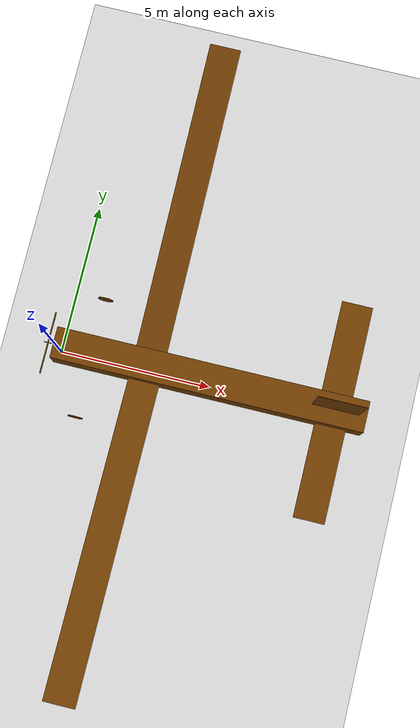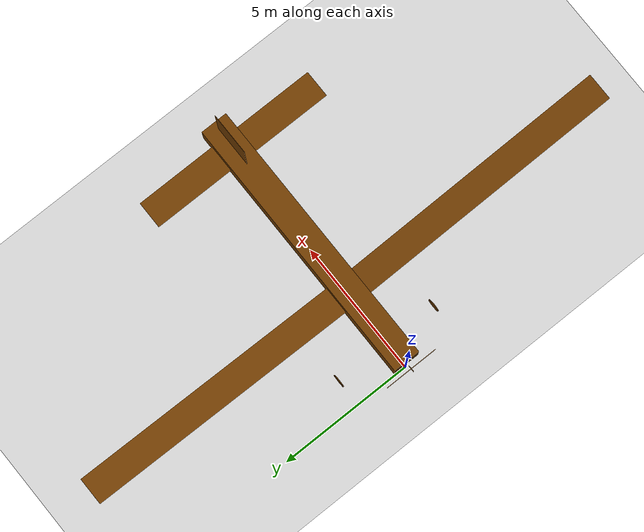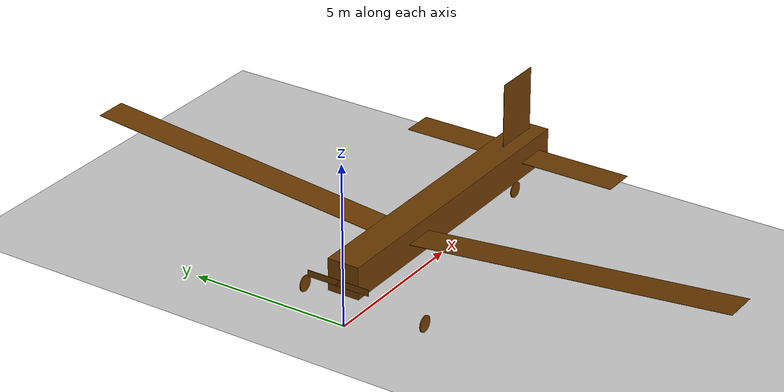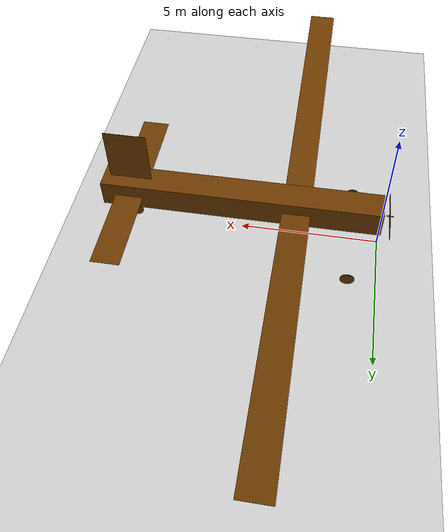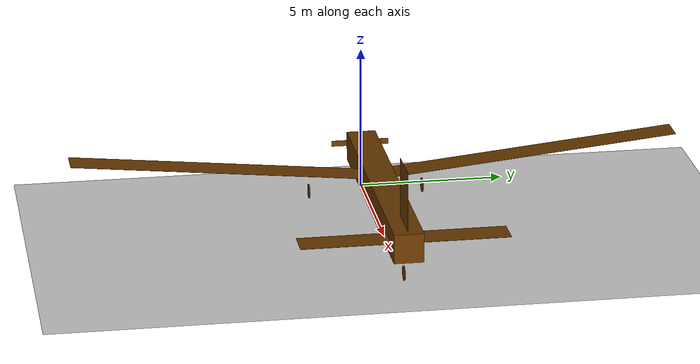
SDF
<sdf version="1.4">
 <world name="default">
  <physics type="ode">
   <gravity>0.0 0.0 -1.00</gravity>
   <ode>
    <solver><type>quick</type><iters>50</iters><sor>0.8</sor></solver>
    <constraints>
     <cfm>0.0</cfm>
     <erp>0.2</erp>
     <contact_max_correcting_vel>0.1</contact_max_correcting_vel>
     <contact_surface_layer>0.0</contact_surface_layer>
    </constraints>
   </ode>
   <real_time_update_rate>0</real_time_update_rate>
   <max_step_size>0.001</max_step_size>
  </physics>
  <include><uri>model://sun</uri></include>
  <model name="ground_plane">
   <static>true</static>
   <link name="link">
    <collision name="collision">
     <geometry><plane><normal>0 0 1</normal><size>1000 1000</size></plane></geometry>
     <surface><friction><ode><mu>1</mu><mu2>1</mu2></ode></friction></surface>
    </collision>
    <visual name="visual">
     <cast_shadows>false</cast_shadows>
     <geometry><plane><normal>0 0 1</normal><size>1000 1000</size></plane></geometry>
     <material>
      <script><uri>file://media/materials/scripts/gazebo.material</uri><name>Gazebo/Grey</name></script>
     </material>
    </visual>
   </link>
  </model>
  <model name="lift_drag_demo_model">
   <static>false</static>
   <link name="body">
    <pose>5.0 0 1.5 0 0 0</pose>
    <inertial>
     <pose>-1.5 0.0 0.0 0.0 0.0 0.0</pose>
     <inertia><ixx>1.8</ixx><ixy>0.0</ixy><ixz>0.0</ixz><iyy>10.8</iyy><iyz>0.0</iyz><izz>10.8</izz></inertia>
     <mass>100.0</mass>
    </inertial>
    <collision name="collision">
     <geometry><box><size>10 1 1</size></box></geometry>
     <surface><friction><ode><mu>0.3</mu><mu2>0.3</mu2></ode></friction></surface>
    </collision>
    <visual name="visual">
     <geometry><box><size>10 1 1</size></box></geometry>
     <material><ambient>0.2 0.2 0.2 1.0</ambient><diffuse>.421 0.225 0.0 1.0</diffuse></material>
    </visual>
    <sensor name="camera" type="camera">
     <pose>-3 0 1.0 0 0.1 3.1416</pose>
     <camera>
      <horizontal_fov>1.047</horizontal_fov>
      <image><width>320</width><height>240</height></image>
      <clip><near>0.1</near><far>1000</far></clip>
     </camera>
     <always_on>1</always_on>
     <update_rate>30</update_rate>
     <visualize>true</visualize>
    </sensor>
   </link>
   <link name="wheel_1">
    <pose>9.0 0 0.25 1.57079 0 0</pose>
    <inertial>
     <inertia><ixx>0.8</ixx><ixy>0.0</ixy><ixz>0.0</ixz><iyy>0.8</iyy><iyz>0.0</iyz><izz>0.8</izz></inertia>
     <mass>10.0</mass>
    </inertial>
    <collision name="collision">
     <geometry><cylinder><radius>0.25</radius><length>0.03</length></cylinder></geometry>
     <surface><friction><ode><mu>0.3</mu><mu2>0.3</mu2></ode></friction></surface>
    </collision>
    <visual name="visual">
     <geometry><cylinder><radius>0.25</radius><length>0.03</length></cylinder></geometry>
     <material><ambient>0.2 0.2 0.2 1.0</ambient><diffuse>.421 0.225 0.0 1.0</diffuse></material>
    </visual>
   </link>
   <link name="wheel_2">
    <pose>1.0 -2.0 0.25 1.57079 0 0</pose>
    <inertial>
     <inertia><ixx>0.8</ixx><ixy>0.0</ixy><ixz>0.0</ixz><iyy>0.8</iyy><iyz>0.0</iyz><izz>0.8</izz></inertia>
     <mass>10.0</mass>
    </inertial>
    <collision name="collision">
     <geometry><cylinder><radius>0.25</radius><length>0.03</length></cylinder></geometry>
     <surface><friction><ode><mu>0.3</mu><mu2>0.3</mu2></ode></friction></surface>
    </collision>
    <visual name="visual">
     <geometry><cylinder><radius>0.25</radius><length>0.03</length></cylinder></geometry>
     <material><ambient>0.2 0.2 0.2 1.0</ambient><diffuse>.421 0.225 0.0 1.0</diffuse></material>
    </visual>
   </link>
   <link name="wheel_3">
    <pose>1.0 2.0 0.25 1.57079 0 0</pose>
    <inertial>
     <inertia><ixx>0.8</ixx><ixy>0.0</ixy><ixz>0.0</ixz><iyy>0.8</iyy><iyz>0.0</iyz><izz>0.8</izz></inertia>
     <mass>10.0</mass>
    </inertial>
    <collision name="collision">
     <geometry><cylinder><radius>0.25</radius><length>0.03</length></cylinder></geometry>
     <surface><friction><ode><mu>0.3</mu><mu2>0.3</mu2></ode></friction></surface>
    </collision>
    <visual name="visual">
     <geometry><cylinder><radius>0.25</radius><length>0.03</length></cylinder></geometry>
     <material><ambient>0.2 0.2 0.2 1.0</ambient><diffuse>.421 0.225 0.0 1.0</diffuse></material>
    </visual>
   </link>
   <link name="rod_1">
    <pose>-0.25 0 1.5 0 0 0</pose>
    <inertial>
     <inertia><ixx>0.0012</ixx><ixy>0.0</ixy><ixz>0.0</ixz><iyy>0.012</iyy><iyz>0.0</iyz><izz>0.012</izz></inertia>
     <mass>1.0</mass>
    </inertial>
    <collision name="collision"><geometry><box><size>0.25 0.02 0.02</size></box></geometry></collision>
    <visual name="visual">
     <geometry><box><size>0.25 0.02 0.02</size></box></geometry>
     <material><ambient>0.3 0.3 0.3 1.0</ambient><diffuse>.421 0.225 0.0 1.0</diffuse></material>
    </visual>
   </link>
   <link name="blade_1">
    <pose>-0.25 0 1.5 0 0 0</pose>
    <inertial>
     <pose>0.0 0.5 0 0.0 0.0 0.0</pose>
     <inertia>
      <ixx>0.0000465</ixx>
      <ixy>0.0</ixy>
      <ixz>0.0</ixz>
      <iyy>0.0000006</iyy>
      <iyz>0.0</iyz>
      <izz>0.0000470</izz>
     </inertia>
     <mass>0.01</mass>
    </inertial>
    <collision name="collision">
     <pose>0.0 0.5 0 0.0 0.0 0.0</pose>
     <geometry><box><size>0.01 1.0 0.2</size></box></geometry>
    </collision>
    <visual name="visual">
     <pose>0.0 0.5 0 0.0 0.0 0.0</pose>
     <geometry><box><size>0.01 1.0 0.2</size></box></geometry>
     <material><ambient>0.5 0.2 0.2 1.0</ambient><diffuse>.421 0.225 0.0 1.0</diffuse></material>
    </visual>
   </link>
   <link name="blade_2">
    <pose>-0.25 0 1.5 0 0 3.141593</pose>
    <inertial>
     <pose>0.0 0.5 0 0.0 0.0 0.0</pose>
     <inertia>
      <ixx>0.0000465</ixx>
      <ixy>0.0</ixy>
      <ixz>0.0</ixz>
      <iyy>0.0000006</iyy>
      <iyz>0.0</iyz>
      <izz>0.0000470</izz>
     </inertia>
     <mass>0.01</mass>
    </inertial>
    <collision name="collision">
     <pose>0.0 0.5 0 0.0 0.0 0.0</pose>
     <geometry><box><size>0.01 1.0 0.2</size></box></geometry>
    </collision>
    <visual name="visual">
     <pose>0.0 0.5 0 0.0 0.0 0</pose>
     <geometry><box><size>0.01 1.0 0.2</size></box></geometry>
     <material><ambient>0.2 0.5 0.2 1.0</ambient><diffuse>.421 0.225 0.0 1.0</diffuse></material>
    </visual>
   </link>
   <joint name="wheel_1_joint" type="revolute">
    <parent>body</parent>
    <child>wheel_1</child>
    <axis>
     <limit><lower>-1e16</lower><upper>1e16</upper></limit>
     <xyz>0.0 1.0 0.0</xyz>
     <dynamics><damping>0.0001</damping></dynamics>
    </axis>
    <physics><ode><cfm_damping>1</cfm_damping></ode></physics>
   </joint>
   <joint name="wheel_2_joint" type="revolute">
    <parent>body</parent>
    <child>wheel_2</child>
    <axis>
     <limit><lower>-1e16</lower><upper>1e16</upper></limit>
     <xyz>0.0 1.0 0.0</xyz>
     <dynamics><damping>0.0001</damping></dynamics>
    </axis>
    <physics><ode><cfm_damping>1</cfm_damping></ode></physics>
   </joint>
   <joint name="wheel_3_joint" type="revolute">
    <parent>body</parent>
    <child>wheel_3</child>
    <axis>
     <limit><lower>-1e16</lower><upper>1e16</upper></limit>
     <xyz>0.0 1.0 0.0</xyz>
     <dynamics><damping>0.0001</damping></dynamics>
    </axis>
    <physics><ode><cfm_damping>1</cfm_damping></ode></physics>
   </joint>
   <joint name="rod_1_joint" type="revolute">
    <parent>body</parent>
    <child>rod_1</child>
    <axis>
     <limit><lower>-1e16</lower><upper>1e16</upper></limit>
     <xyz>1.0 0.0 0.0</xyz>
     <dynamics><damping>0.0001</damping></dynamics>
    </axis>
    <physics><ode><cfm_damping>1</cfm_damping></ode></physics>
   </joint>
   <joint name="blade_1_joint" type="revolute">
    <parent>rod_1</parent>
    <child>blade_1</child>
    <axis>
     <limit><lower>-0.0</lower><upper>0.0</upper></limit>
     <xyz>1.0 0.0 0.0</xyz>
     <dynamics><damping>1.000000</damping></dynamics>
    </axis>
    <physics><ode><cfm_damping>1</cfm_damping></ode></physics>
   </joint>
   <joint name="blade_2_joint" type="revolute">
    <parent>rod_1</parent>
    <child>blade_2</child>
    <axis>
     <limit><lower>-0.0</lower><upper>0.0</upper></limit>
     <xyz>-1.0 0.0 0.0</xyz>
     <dynamics><damping>1.000000</damping></dynamics>
    </axis>
    <physics><ode><cfm_damping>1</cfm_damping></ode></physics>
   </joint>
   <link name="wing_1">
    <pose>3 0 1.5 0.1 0 0</pose>
    <inertial>
     <pose>0.0 5.5 0 0.0 0.0 0.0</pose>
     <inertia><ixx>0.465</ixx><ixy>0.0</ixy><ixz>0.0</ixz><iyy>0.006</iyy><iyz>0.0</iyz><izz>0.470</izz></inertia>
     <mass>10.0</mass>
    </inertial>
    <collision name="collision">
     <pose>0.0 5.5 0 0.0 0.0 0.0</pose>
     <geometry><box><size>1.0 10.0 0.01</size></box></geometry>
    </collision>
    <visual name="visual">
     <pose>0.0 5.5 0 0.0 0.0 0.0</pose>
     <geometry><box><size>1.0 10.0 0.01</size></box></geometry>
     <material><ambient>0.5 0.2 0.2 1.0</ambient><diffuse>.421 0.225 0.0 1.0</diffuse></material>
    </visual>
   </link>
   <link name="wing_2">
    <pose>3 0 1.5 -0.1 0 0</pose>
    <inertial>
     <pose>0.0 -5.5 0 0.0 0.0 0.0</pose>
     <inertia><ixx>0.465</ixx><ixy>0.0</ixy><ixz>0.0</ixz><iyy>0.006</iyy><iyz>0.0</iyz><izz>0.470</izz></inertia>
     <mass>10.0</mass>
    </inertial>
    <collision name="collision">
     <pose>0.0 -5.5 0 0.0 0.0 0.0</pose>
     <geometry><box><size>1.0 10.0 0.01</size></box></geometry>
    </collision>
    <visual name="visual">
     <pose>0.0 -5.5 0 0.0 0.0 0</pose>
     <geometry><box><size>1.0 10.0 0.01</size></box></geometry>
     <material><ambient>0.2 0.5 0.2 1.0</ambient><diffuse>.421 0.225 0.0 1.0</diffuse></material>
    </visual>
   </link>
   <joint name="wing_1_joint" type="revolute">
    <parent>body</parent>
    <child>wing_1</child>
    <axis>
     <limit><lower>-0.0</lower><upper>0.0</upper></limit>
     <xyz>0.0 1.0 0.0</xyz>
     <dynamics><damping>1.000000</damping></dynamics>
    </axis>
    <physics><ode><cfm_damping>1</cfm_damping></ode></physics>
   </joint>
   <joint name="wing_2_joint" type="revolute">
    <parent>body</parent>
    <child>wing_2</child>
    <axis>
     <limit><lower>-0.0</lower><upper>0.0</upper></limit>
     <xyz>0.0 -1.0 0.0</xyz>
     <dynamics><damping>1.000000</damping></dynamics>
    </axis>
    <physics><ode><cfm_damping>1</cfm_damping></ode></physics>
   </joint>
   <link name="wing_3">
    <pose>9 0 1.5 0 0 0</pose>
    <inertial>
     <pose>0.0 2.0 0 0.0 0.0 0.0</pose>
     <inertia>
      <ixx>0.0465</ixx>
      <ixy>0.0</ixy>
      <ixz>0.0</ixz>
      <iyy>0.0006</iyy>
      <iyz>0.0</iyz>
      <izz>0.0470</izz>
     </inertia>
     <mass>2.0</mass>
    </inertial>
    <collision name="collision">
     <pose>0.0 2.0 0 0.0 0.0 0.0</pose>
     <geometry><box><size>1.0 3.0 0.01</size></box></geometry>
    </collision>
    <visual name="visual">
     <pose>0.0 2.0 0 0.0 0.0 0.0</pose>
     <geometry><box><size>1.0 3.0 0.01</size></box></geometry>
     <material><ambient>0.5 0.2 0.2 1.0</ambient><diffuse>.421 0.225 0.0 1.0</diffuse></material>
    </visual>
   </link>
   <link name="wing_4">
    <pose>9 0 1.5 0 0 0</pose>
    <inertial>
     <pose>0.0 -2.0 0 0.0 0.0 0.0</pose>
     <inertia>
      <ixx>0.0465</ixx>
      <ixy>0.0</ixy>
      <ixz>0.0</ixz>
      <iyy>0.0006</iyy>
      <iyz>0.0</iyz>
      <izz>0.0470</izz>
     </inertia>
     <mass>2.0</mass>
    </inertial>
    <collision name="collision">
     <pose>0.0 -2.0 0 0.0 0.0 0.0</pose>
     <geometry><box><size>1.0 3.0 0.01</size></box></geometry>
    </collision>
    <visual name="visual">
     <pose>0.0 -2.0 0 0.0 0.0 0</pose>
     <geometry><box><size>1.0 3.0 0.01</size></box></geometry>
     <material><ambient>0.2 0.5 0.2 1.0</ambient><diffuse>.421 0.225 0.0 1.0</diffuse></material>
    </visual>
   </link>
   <joint name="wing_3_joint" type="revolute">
    <parent>body</parent>
    <child>wing_3</child>
    <axis>
     <limit><lower>-0.0</lower><upper>0.0</upper></limit>
     <xyz>0.0 1.0 0.0</xyz>
     <dynamics><damping>1.000000</damping></dynamics>
    </axis>
    <physics><ode><cfm_damping>1</cfm_damping></ode></physics>
   </joint>
   <joint name="wing_4_joint" type="revolute">
    <parent>body</parent>
    <child>wing_4</child>
    <axis>
     <limit><lower>-0.0</lower><upper>0.0</upper></limit>
     <xyz>0.0 -1.0 0.0</xyz>
     <dynamics><damping>1.000000</damping></dynamics>
    </axis>
    <physics><ode><cfm_damping>1</cfm_damping></ode></physics>
   </joint>
   <joint name="wing_5_joint" type="revolute">
    <parent>body</parent>
    <child>wing_5</child>
    <axis>
     <limit><lower>-0.0</lower><upper>0.0</upper></limit>
     <xyz>0.0 0.0 1.0</xyz>
     <dynamics><damping>1.000000</damping></dynamics>
    </axis>
    <physics><ode><cfm_damping>1</cfm_damping></ode></physics>
   </joint>
   <link name="wing_5">
    <pose>9 0 2.0 0 0 0</pose>
    <inertial>
     <pose>0.0 0 1 0.0 0.0 0.0</pose>
     <inertia>
      <ixx>0.0465</ixx>
      <ixy>0.0</ixy>
      <ixz>0.0</ixz>
      <iyy>0.0006</iyy>
      <iyz>0.0</iyz>
      <izz>0.0470</izz>
     </inertia>
     <mass>2.0</mass>
    </inertial>
    <collision name="collision">
     <pose>0.0 0 1 0.0 0.0 0.0</pose>
     <geometry><box><size>1.5 0.01 2.0</size></box></geometry>
    </collision>
    <visual name="visual">
     <pose>0.0 0 1 0.0 0.0 0</pose>
     <geometry><box><size>1.5 0.01 2.0</size></box></geometry>
     <material><ambient>0.2 0.5 0.2 1.0</ambient><diffuse>.421 0.225 0.0 1.0</diffuse></material>
    </visual>
   </link>
   <plugin name="gazebo_blade_1" filename="libLiftDragPlugin.so">
    <a0>0.1</a0>
    <cla>0.100</cla>
    <cda>0.001</cda>
    <cma>0.00</cma>
    <alpha_stall>0.2</alpha_stall>
    <cla_stall>-0.2</cla_stall>
    <cda_stall>1.0</cda_stall>
    <cma_stall>0.0</cma_stall>
    <cp>0.0 0.5 0</cp>
    <area>0.2</area>
    <air_density>1.2041</air_density>
    <forward>0 0 -1</forward>
    <upward>1 0 0</upward>
    <link_name>lift_drag_demo_model::blade_1</link_name>
   </plugin>
   <plugin name="gazebo_blade_2" filename="libLiftDragPlugin.so">
    <a0>0.1</a0>
    <cla>0.100</cla>
    <cda>0.001</cda>
    <cma>0.00</cma>
    <alpha_stall>0.2</alpha_stall>
    <cla_stall>-0.2</cla_stall>
    <cda_stall>1.0</cda_stall>
    <cma_stall>0.0</cma_stall>
    <cp>0.0 0.5 0</cp>
    <area>0.2</area>
    <air_density>1.2041</air_density>
    <forward>0 0 -1</forward>
    <upward>1 0 0</upward>
    <link_name>lift_drag_demo_model::blade_2</link_name>
   </plugin>
   <plugin name="gazebo_wing_1" filename="libLiftDragPlugin.so">
    <a0>0.1</a0>
    <cla>4.000</cla>
    <cda>0.001</cda>
    <cma>0.00</cma>
    <alpha_stall>0.2</alpha_stall>
    <cla_stall>-0.2</cla_stall>
    <cda_stall>1.0</cda_stall>
    <cma_stall>0.0</cma_stall>
    <cp>0.0 5.0 0</cp>
    <area>10</area>
    <air_density>1.2041</air_density>
    <forward>-1 0 0</forward>
    <upward>0 0 1</upward>
    <link_name>lift_drag_demo_model::wing_1</link_name>
   </plugin>
   <plugin name="gazebo_wing_2" filename="libLiftDragPlugin.so">
    <a0>0.1</a0>
    <cla>4.000</cla>
    <cda>0.001</cda>
    <cma>0.00</cma>
    <alpha_stall>0.2</alpha_stall>
    <cla_stall>-0.2</cla_stall>
    <cda_stall>1.0</cda_stall>
    <cma_stall>0.0</cma_stall>
    <cp>0.0 -5.0 0</cp>
    <area>10</area>
    <air_density>1.2041</air_density>
    <forward>-1 0 0</forward>
    <upward>0 0 1</upward>
    <link_name>lift_drag_demo_model::wing_2</link_name>
   </plugin>
   <plugin name="gazebo_wing_3" filename="libLiftDragPlugin.so">
    <a0>0.01</a0>
    <cla>4.000</cla>
    <cda>0.001</cda>
    <cma>0.00</cma>
    <alpha_stall>0.2</alpha_stall>
    <cla_stall>-0.2</cla_stall>
    <cda_stall>1.0</cda_stall>
    <cma_stall>0.0</cma_stall>
    <cp>0.0 1.5 0</cp>
    <area>3</area>
    <air_density>1.2041</air_density>
    <forward>-1 0 0</forward>
    <upward>0 0 1</upward>
    <link_name>lift_drag_demo_model::wing_3</link_name>
   </plugin>
   <plugin name="gazebo_wing_4" filename="libLiftDragPlugin.so">
    <a0>0.01</a0>
    <cla>4.000</cla>
    <cda>0.001</cda>
    <cma>0.00</cma>
    <alpha_stall>0.2</alpha_stall>
    <cla_stall>-0.2</cla_stall>
    <cda_stall>1.0</cda_stall>
    <cma_stall>0.0</cma_stall>
    <cp>0.0 -1.5 0</cp>
    <area>3</area>
    <air_density>1.2041</air_density>
    <forward>-1 0 0</forward>
    <upward>0 0 1</upward>
    <link_name>lift_drag_demo_model::wing_4</link_name>
   </plugin>
   <plugin name="gazebo_wing_5" filename="libLiftDragPlugin.so">
    <a0>0.03</a0>
    <cla>4.000</cla>
    <cda>0.001</cda>
    <cma>0.00</cma>
    <alpha_stall>0.2</alpha_stall>
    <cla_stall>-0.2</cla_stall>
    <cda_stall>1.0</cda_stall>
    <cma_stall>0.0</cma_stall>
    <cp>0.0 0 1.0</cp>
    <area>3</area>
    <air_density>1.2041</air_density>
    <forward>-1 0 0</forward>
    <upward>0 1 0</upward>
    <link_name>lift_drag_demo_model::wing_5</link_name>
   </plugin>
  </model>
 </world>
</sdf>
